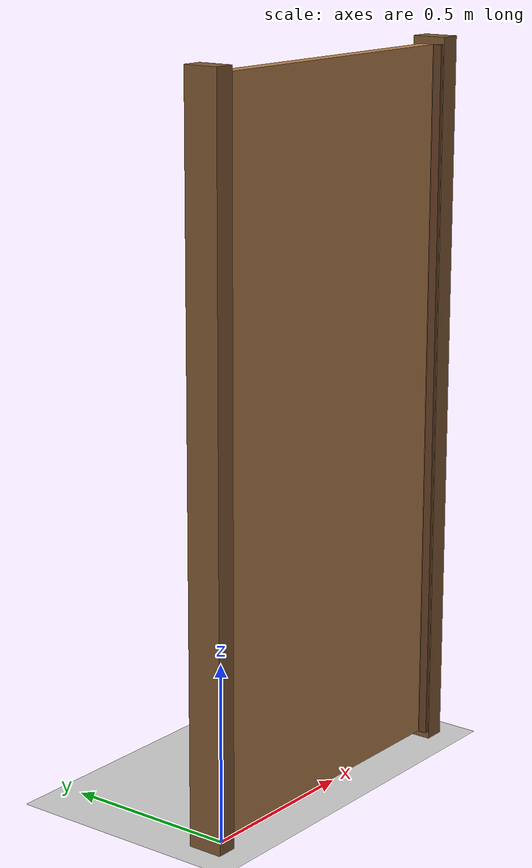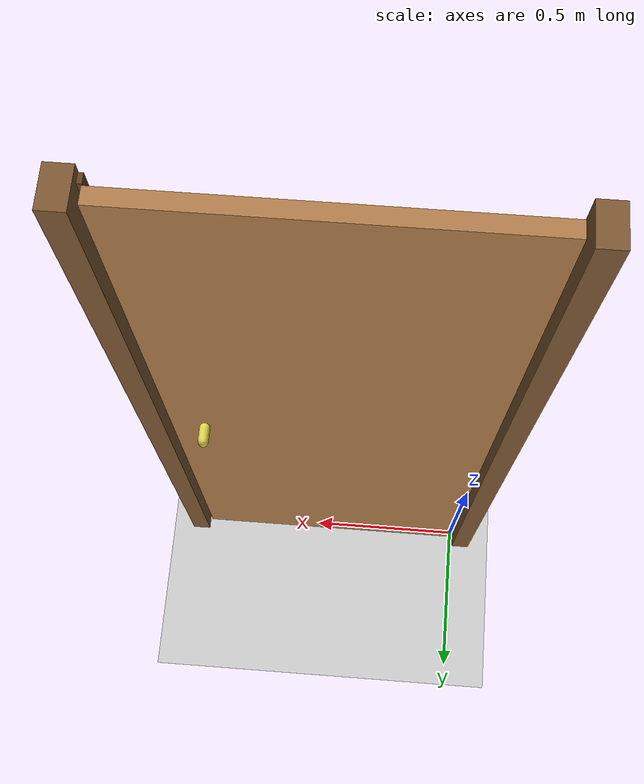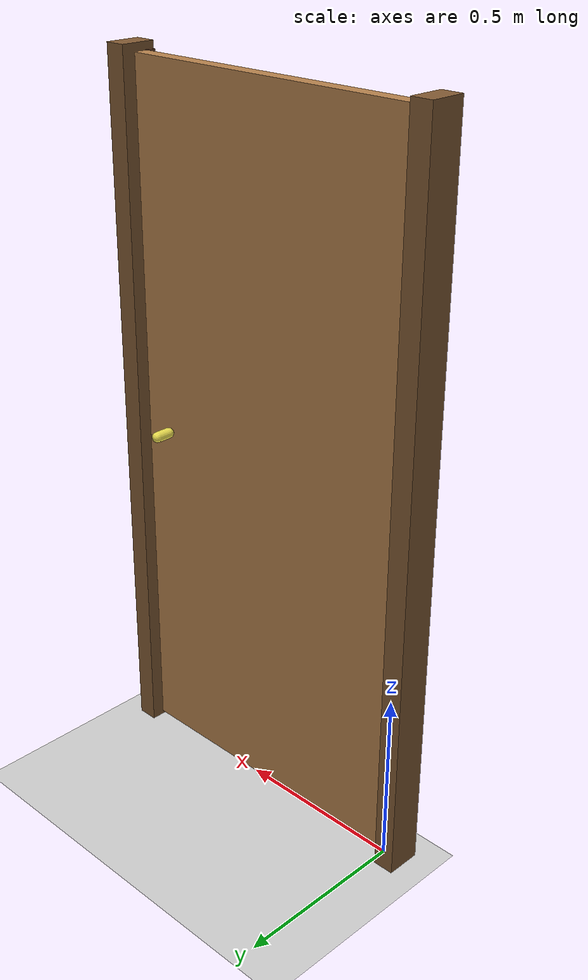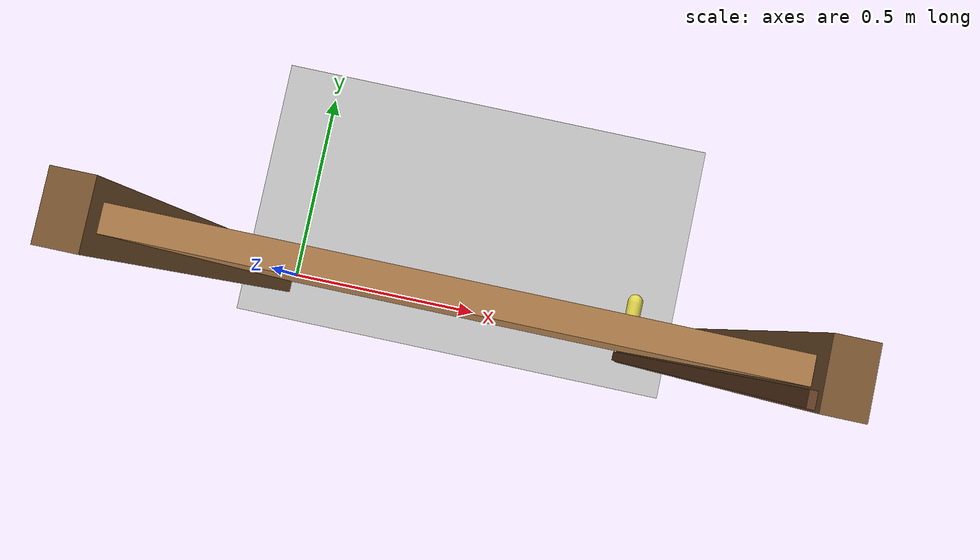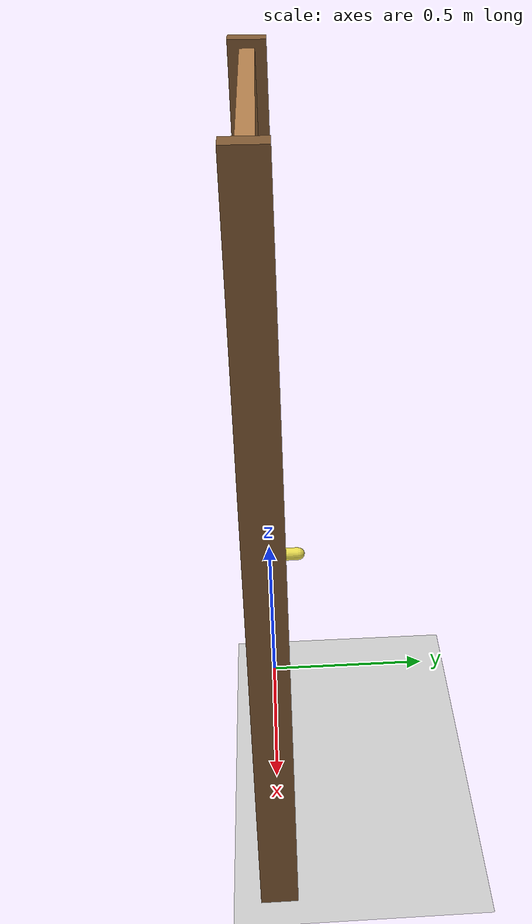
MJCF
<mujoco model="door_swings_shut">
  <compiler angle="radian"/>
  <option timestep="0.002"/>
  <worldbody>
    <light name="sun" pos="1 -2 4" dir="-0.2 0.4 -1"/>
    <geom name="floor" type="plane" size="5 5 0.1" rgba="0.8 0.8 0.8 1"/>
    <geom name="hinge_post" type="box" pos="-0.04 0 1.02" size="0.03 0.05 1.02" rgba="0.5 0.35 0.2 1" contype="0" conaffinity="0"/>
    <geom name="latch_post" type="box" pos="0.94 0 1.02" size="0.03 0.05 1.02" rgba="0.5 0.35 0.2 1" contype="0" conaffinity="0"/>
    <geom name="door_stop" type="box" pos="0.905 -0.035 1.02" size="0.006 0.012 1.0" rgba="0.4 0.25 0.15 1" contype="0" conaffinity="0"/>
    <body name="door" pos="0 0 0.02">
      <joint name="hinge" type="hinge" axis="0 0 1" pos="0 0 0" limited="true" range="0 1.7" stiffness="20" springref="-0.2" damping="6" frictionloss="0.5"/>
      <geom name="door_panel" type="box" pos="0.45 0 1.0" size="0.45 0.02 1.0" mass="20" rgba="0.7 0.5 0.3 1" contype="0" conaffinity="0"/>
      <geom name="door_handle" type="capsule" fromto="0.8 0.04 1.0 0.8 0.08 1.0" size="0.015" mass="0.2" rgba="0.9 0.85 0.3 1" contype="0" conaffinity="0"/>
    </body>
  </worldbody>
  <keyframe>
    <key name="start" qpos="1.4" qvel="0"/>
  </keyframe>
</mujoco>
